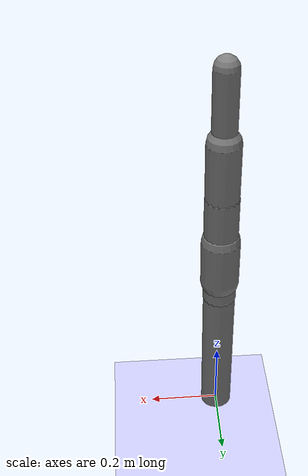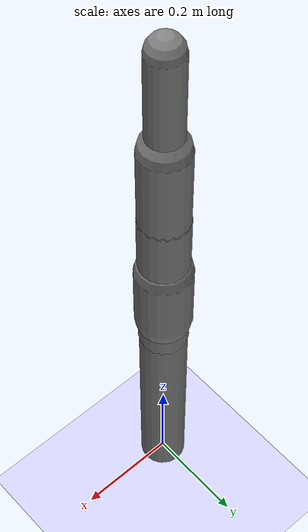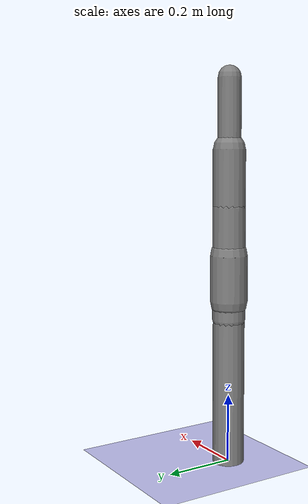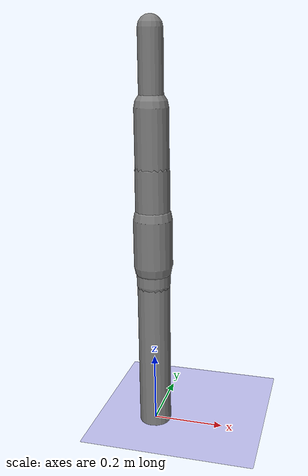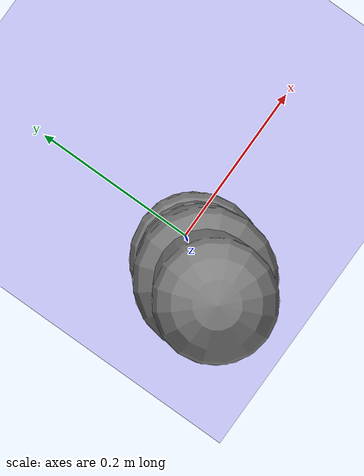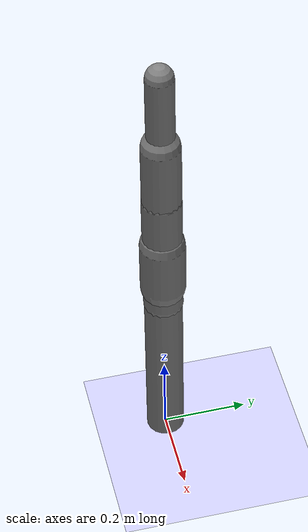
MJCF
<?xml version='1.0' encoding='UTF-8'?>
<mujoco model="robot_model">
  <worldbody>
    <light name="light" pos="0 -3 10" dir="0 0.5 -1" diffuse=".8 .8 .8" specular="0.1 0.1 0.1"/>
    <geom name="floor" type="plane" size="10.0 10.0 0.1" pos="0 0 0" rgba="0.8 0.8 1 1" contype="2" conaffinity="1"/>
    <body name="limb0" pos="0 0 0">
      <geom type="capsule" fromto="0 0 0 0 0 0.5093058392165073" size="0.04539389763874157" density="1056.981284862338" contype="1" conaffinity="2"/>
      <site type="sphere" size="0.01" name="limb0_site0" pos="0 0 0.29382243132774516"/>
      <site type="sphere" size="0.01" name="limb0_site1" pos="0 0 0.4796164438374995"/>
      <freejoint name="limb0_root"/>
      <body name="limb1" pos="0 0 0.29382243132774516">
        <geom type="capsule" fromto="0 0 0 0 0 0.2108483557747831" size="0.03176305440673138" density="688.7771406626807" contype="1" conaffinity="2"/>
        <site type="sphere" size="0.01" name="limb1_site0" pos="0 0 0.1315488757351795"/>
        <site type="sphere" size="0.01" name="limb1_site1" pos="0 0 0.0807207647042045"/>
        <site type="sphere" size="0.01" name="limb1_site2" pos="0 0 0.20255461164896735"/>
        <body name="limb2" pos="0 0 0.1315488757351795">
          <geom type="capsule" fromto="0 0 0 0 0 0.32331157919001374" size="0.04703069767789839" density="709.8359320414992" contype="1" conaffinity="2"/>
          <joint name="joint_limb1_limb2_0" type="hinge" axis="0 1 0" range="-79.19027832141104 79.19027832141104" damping="5.0"/>
        </body>
        <body name="limb3" pos="0 0 0.0807207647042045">
          <geom type="capsule" fromto="0 0 0 0 0 0.3449366956007403" size="0.04182995516077146" density="888.638751137447" contype="1" conaffinity="2"/>
          <site type="sphere" size="0.01" name="limb3_site0" pos="0 0 0.34476469369601037"/>
          <body name="limb4" pos="0 0 0.34476469369601037">
            <geom type="capsule" fromto="0 0 0 0 0 0.38689637571819735" size="0.03296585503229504" density="787.6117064878987" contype="1" conaffinity="2"/>
            <joint name="joint_limb3_limb4_0" type="hinge" axis="0 1 0" range="-97.60316524447805 97.60316524447805" damping="5.0"/>
          </body>
          <joint name="joint_limb1_limb3_0" type="hinge" axis="1 0 0" range="-76.57739072162552 76.57739072162552" damping="5.0"/>
        </body>
        <body name="limb5" pos="0 0 0.20255461164896735">
          <geom type="capsule" fromto="0 0 0 0 0 0.4886525017141072" size="0.02730849030649112" density="1118.1587480940386" contype="1" conaffinity="2"/>
          <site type="sphere" size="0.01" name="limb5_site0" pos="0 0 0.2148602362279738"/>
          <site type="sphere" size="0.01" name="limb5_site1" pos="0 0 0.2502629485534305"/>
          <body name="limb6" pos="0 0 0.2148602362279738">
            <geom type="capsule" fromto="0 0 0 0 0 0.19942307054689806" size="0.04609395862756084" density="1147.4288306062897" contype="1" conaffinity="2"/>
            <joint name="joint_limb5_limb6_0" type="hinge" axis="0 0 1" range="-97.3556228309299 97.3556228309299" damping="5.0"/>
          </body>
          <body name="limb7" pos="0 0 0.2502629485534305">
            <geom type="capsule" fromto="0 0 0 0 0 0.1797215636428" size="0.026091798513952557" density="745.8119714770129" contype="1" conaffinity="2"/>
            <joint name="joint_limb5_limb7_0" type="hinge" axis="1 0 0" range="-39.46093477322345 39.46093477322345" damping="5.0"/>
          </body>
          <joint name="joint_limb1_limb5_0" type="hinge" axis="0 1 0" range="-80.38696577407528 80.38696577407528" damping="5.0"/>
        </body>
        <joint name="joint_limb0_limb1_0" type="hinge" axis="0 1 0" range="-72.78200781124774 72.78200781124774" damping="5.0"/>
      </body>
      <body name="limb8" pos="0 0 0.4796164438374995">
        <geom type="capsule" fromto="0 0 0 0 0 0.13252947652278277" size="0.05372058858359962" density="1100.1826029615775" contype="1" conaffinity="2"/>
        <site type="sphere" size="0.01" name="limb8_site0" pos="0 0 0.0018206712109859072"/>
        <body name="limb9" pos="0 0 0.0018206712109859072">
          <geom type="capsule" fromto="0 0 0 0 0 0.3297643075211269" size="0.03183707388037653" density="514.4016674114245" contype="1" conaffinity="2"/>
          <joint name="joint_limb8_limb9_0" type="hinge" axis="1 0 0" range="-63.38912243499314 63.38912243499314" damping="5.0"/>
        </body>
        <joint name="joint_limb0_limb8_0" type="hinge" axis="0 1 0" range="-46.186401585393725 46.186401585393725" damping="5.0"/>
      </body>
    </body>
  </worldbody>
  <actuator>
    <position name="position_actuator_joint_limb0_limb1_0" joint="joint_limb0_limb1_0" gear="1.0330237717590445" inheritrange="1" kp="100.0"/>
    <position name="position_actuator_joint_limb1_limb2_0" joint="joint_limb1_limb2_0" gear="1.0104857860709995" inheritrange="1" kp="100.0"/>
    <position name="position_actuator_joint_limb1_limb3_0" joint="joint_limb1_limb3_0" gear="1.9786544527946286" inheritrange="1" kp="100.0"/>
    <position name="position_actuator_joint_limb3_limb4_0" joint="joint_limb3_limb4_0" gear="1.7459471619076385" inheritrange="1" kp="100.0"/>
    <position name="position_actuator_joint_limb1_limb5_0" joint="joint_limb1_limb5_0" gear="1.272740550353963" inheritrange="1" kp="100.0"/>
    <position name="position_actuator_joint_limb5_limb6_0" joint="joint_limb5_limb6_0" gear="1.2514069354827302" inheritrange="1" kp="100.0"/>
    <position name="position_actuator_joint_limb5_limb7_0" joint="joint_limb5_limb7_0" gear="1.6699171564828723" inheritrange="1" kp="100.0"/>
    <position name="position_actuator_joint_limb0_limb8_0" joint="joint_limb0_limb8_0" gear="0.5181521235082891" inheritrange="1" kp="100.0"/>
    <position name="position_actuator_joint_limb8_limb9_0" joint="joint_limb8_limb9_0" gear="1.6432957577888294" inheritrange="1" kp="100.0"/>
  </actuator>
</mujoco>
